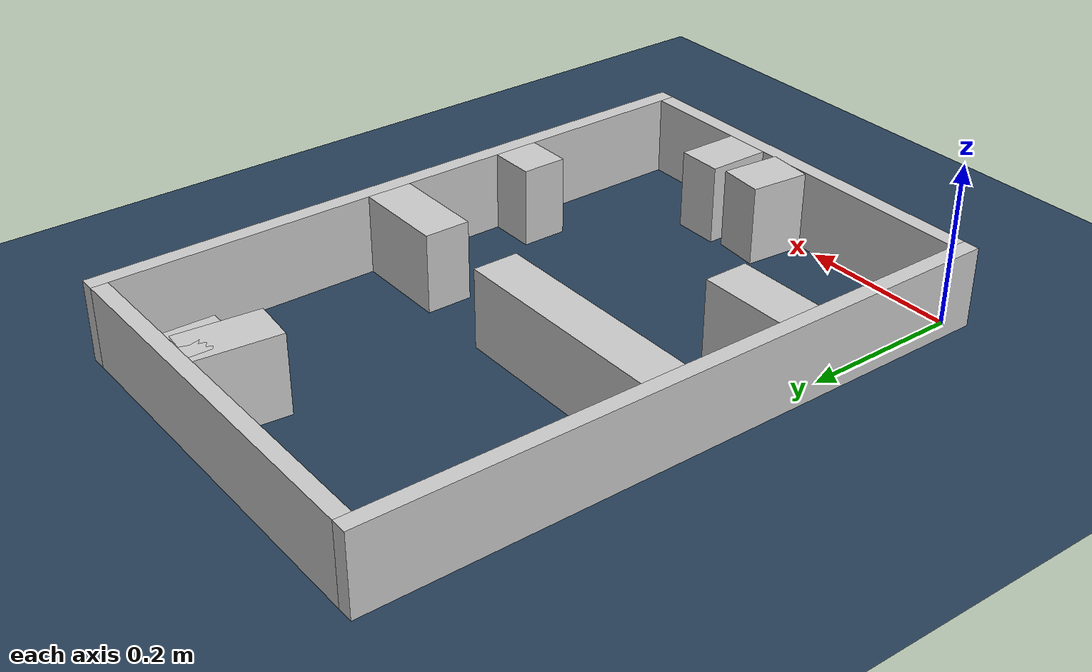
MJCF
<?xml version="1.0" ?>
<mujoco model="generated_real_template">
  <compiler angle="degree"/>
  <option timestep="0.002" integrator="implicitfast" iterations="100" cone="elliptic"/>
  <default>
    <geom density="1"/>
  </default>
  <asset>
    <texture builtin="gradient" height="3072" rgb1="0.3 0.5 0.7" rgb2="0 0 0" type="skybox" width="512"/>
    <texture builtin="checker" height="300" mark="edge" markrgb="0.8 0.8 0.8" name="groundplane" rgb1="0.2 0.3 0.4" rgb2="0.1 0.2 0.3" type="2d" width="300"/>
    <material name="groundplane" reflectance="0.2" texrepeat="5 5" texture="groundplane" texuniform="true"/>
  </asset>
  <worldbody>
    <light dir="0 0 -1" directional="true" pos="0 0 1.5"/>
    <geom name="floor" type="plane" condim="4" friction="0.5 0.005 0.001" material="groundplane" size="0 0 0.05"/>
    <body name="walls">
      <geom name="wall_boundary_left" type="box" condim="4" friction="1.0 0.005 0.0001" rgba="0.8 0.8 0.8 1" pos="-0.010000 0.387500 0.050000" euler="0 0 0.000000" size="0.010000 0.407500 0.050000"/>
      <geom name="wall_boundary_right" type="box" condim="4" friction="1.0 0.005 0.0001" rgba="0.8 0.8 0.8 1" pos="0.500000 0.387500 0.050000" euler="0 0 0.000000" size="0.010000 0.407500 0.050000"/>
      <geom name="wall_boundary_bottom" type="box" condim="4" friction="1.0 0.005 0.0001" rgba="0.8 0.8 0.8 1" pos="0.245000 -0.010000 0.050000" euler="0 0 0.000000" size="0.245000 0.010000 0.050000"/>
      <geom name="wall_boundary_top" type="box" condim="4" friction="1.0 0.005 0.0001" rgba="0.8 0.8 0.8 1" pos="0.245000 0.785000 0.050000" euler="0 0 0.000000" size="0.245000 0.010000 0.050000"/>
      <geom name="wall_inner_1_1" type="box" condim="4" friction="1.0 0.005 0.0001" rgba="0.8 0.8 0.8 1" pos="0.055415 0.235938 0.050000" euler="0 0 0.000000" size="0.055415 0.028500 0.050000"/>
      <geom name="wall_inner_1_2" type="box" condim="4" friction="1.0 0.005 0.0001" rgba="0.8 0.8 0.8 1" pos="0.460822 0.235938 0.050000" euler="0 0 0.000000" size="0.029178 0.028500 0.050000"/>
      <geom name="wall_inner_2_1" type="box" condim="4" friction="1.0 0.005 0.0001" rgba="0.8 0.8 0.8 1" pos="0.139267 0.420356 0.050000" euler="0 0 0.000000" size="0.139267 0.028500 0.050000"/>
      <geom name="wall_inner_2_2" type="box" condim="4" friction="1.0 0.005 0.0001" rgba="0.8 0.8 0.8 1" pos="0.430131 0.420356 0.050000" euler="0 0 0.000000" size="0.059869 0.028500 0.050000"/>
      <geom name="wall_inner_3_1" type="box" condim="4" friction="1.0 0.005 0.0001" rgba="0.8 0.8 0.8 1" pos="0.256381 0.037684 0.050000" euler="0 0 84.673395" size="0.037847 0.028500 0.050000"/>
      <geom name="wall_inner_3_2" type="box" condim="4" friction="1.0 0.005 0.0001" rgba="0.8 0.8 0.8 1" pos="0.320337 0.723648 0.050000" euler="0 0 84.673395" size="0.051575 0.028500 0.050000"/>
      <geom name="wall_inner_4_1" type="box" condim="4" friction="1.0 0.005 0.0001" rgba="0.8 0.8 0.8 1" pos="0.328247 0.039420 0.050000" euler="0 0 89.559926" size="0.039421 0.028500 0.050000"/>
      <geom name="wall_inner_4_2" type="box" condim="4" friction="1.0 0.005 0.0001" rgba="0.8 0.8 0.8 1" pos="0.333671 0.745674 0.050000" euler="0 0 89.559926" size="0.029327 0.028500 0.050000"/>
    </body>
  </worldbody>
</mujoco>
